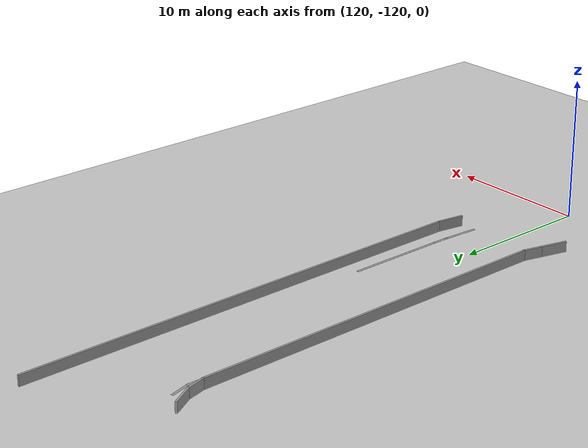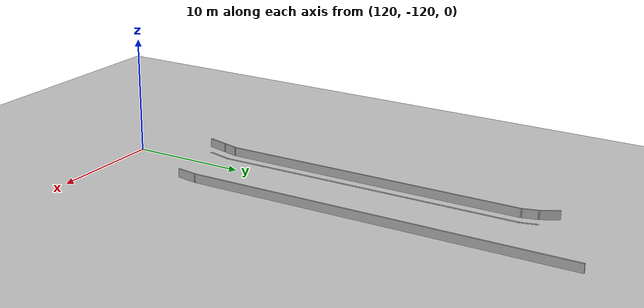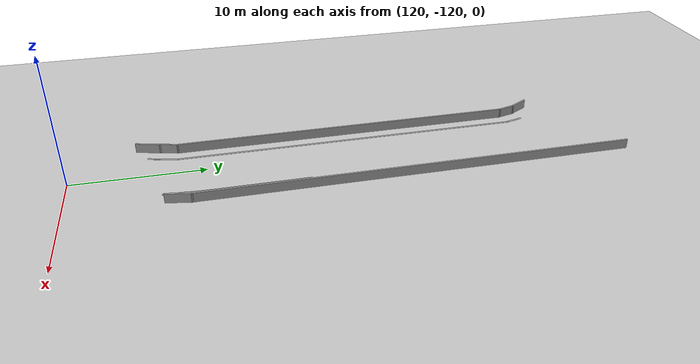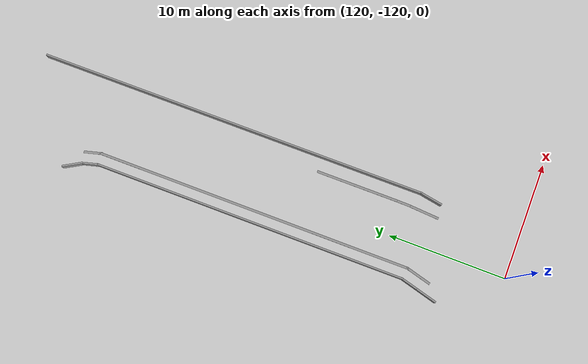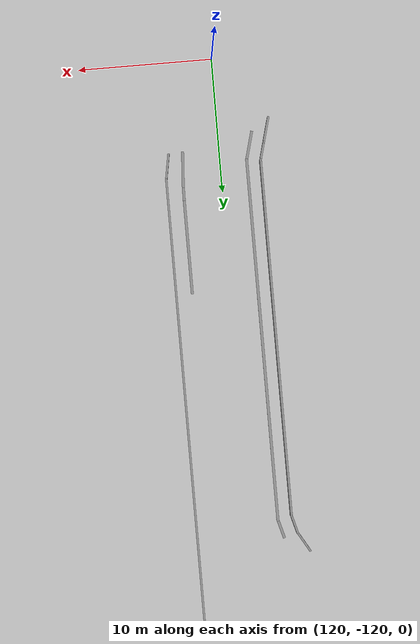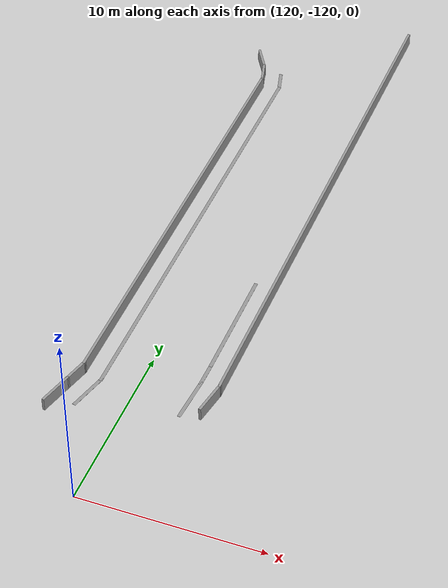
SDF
<sdf version="1.6">
 <world name="default">
  <model name="ground_plane">
   <static>1</static>
   <link name="link">
    <collision name="collision">
     <geometry><plane><normal>0 0 1</normal><size>100 100</size></plane></geometry>
     <surface>
      <contact><collide_bitmask>65535</collide_bitmask></contact>
      <friction><ode><mu>100</mu><mu2>50</mu2></ode></friction>
     </surface>
    </collision>
    <visual name="visual">
     <cast_shadows>0</cast_shadows>
     <geometry><plane><normal>0 0 1</normal><size>100 100</size></plane></geometry>
     <material>
      <script><uri>file://media/materials/scripts/gazebo.material</uri><name>Gazebo/Grey</name></script>
     </material>
    </visual>
   </link>
  </model>
  <model name="GercekDuvarSeritKoyu1">
   <link name="Wall_177">
    <pose>59.6456 56.4099 0 0 -0 2.8797</pose>
    <inertial>
     <mass>1</mass>
     <inertia><ixx>1</ixx><ixy>0</ixy><ixz>0</ixz><iyy>1</iyy><iyz>0</iyz><izz>1</izz></inertia>
    </inertial>
    <visual name="Wall_177_Visual">
     <pose>0 0 0.375 0 -0 0</pose>
     <geometry><box><size>2 0.15 0.75</size></box></geometry>
     <material>
      <script><uri>file://media/materials/scripts/gazebo.material</uri><name>Gazebo/Grey</name></script>
      <ambient>0.5 0.5 0.5 1</ambient>
      <shader type="pixel"><normal_map>__default__</normal_map></shader>
      <diffuse>0.7 0.7 0.7 1</diffuse>
      <specular>0.01 0.01 0.01 1</specular>
      <emissive>0 0 0 1</emissive>
     </material>
     <meta><layer>0</layer></meta>
    </visual>
    <collision name="Wall_177_Collision">
     <pose>0 0 0.375 0 -0 0</pose>
     <geometry><box><size>2 0.15 0.75</size></box></geometry>
     <surface>
      <friction>
       <ode><mu>1</mu><mu2>1</mu2><fdir1>0 0 0</fdir1><slip1>0</slip1><slip2>0</slip2></ode>
       <torsional>
        <coefficient>1</coefficient>
        <patch_radius>0</patch_radius>
        <surface_radius>0</surface_radius>
        <use_patch_radius>1</use_patch_radius>
        <ode><slip>0</slip></ode>
       </torsional>
      </friction>
      <bounce><restitution_coefficient>0</restitution_coefficient><threshold>1e+06</threshold></bounce>
      <contact>
       <collide_without_contact>0</collide_without_contact>
       <collide_without_contact_bitmask>1</collide_without_contact_bitmask>
       <collide_bitmask>1</collide_bitmask>
       <ode>
        <soft_cfm>0</soft_cfm>
        <soft_erp>0.2</soft_erp>
        <kp>1e+13</kp>
        <kd>1</kd>
        <max_vel>0.01</max_vel>
        <min_depth>0</min_depth>
       </ode>
       <bullet>
        <split_impulse>1</split_impulse>
        <split_impulse_penetration_threshold>-0.01</split_impulse_penetration_threshold>
        <soft_cfm>0</soft_cfm>
        <soft_erp>0.2</soft_erp>
        <kp>1e+13</kp>
        <kd>1</kd>
       </bullet>
      </contact>
     </surface>
    </collision>
   </link>
   <link name="Wall_178">
    <pose>58.1001 56.8239 0 0 -0 2.88008</pose>
    <inertial>
     <mass>1</mass>
     <inertia><ixx>1</ixx><ixy>0</ixy><ixz>0</ixz><iyy>1</iyy><iyz>0</iyz><izz>1</izz></inertia>
    </inertial>
    <visual name="Wall_178_Visual">
     <pose>0 0 0.375 0 -0 0</pose>
     <geometry><box><size>1.5 0.15 0.75</size></box></geometry>
     <material>
      <script><uri>file://media/materials/scripts/gazebo.material</uri><name>Gazebo/Grey</name></script>
      <ambient>0.5 0.5 0.5 1</ambient>
      <shader type="pixel"><normal_map>__default__</normal_map></shader>
      <diffuse>0.7 0.7 0.7 1</diffuse>
      <specular>0.01 0.01 0.01 1</specular>
      <emissive>0 0 0 1</emissive>
     </material>
     <meta><layer>0</layer></meta>
    </visual>
    <collision name="Wall_178_Collision">
     <pose>0 0 0.375 0 -0 0</pose>
     <geometry><box><size>1.5 0.15 0.75</size></box></geometry>
     <surface>
      <friction>
       <ode><mu>1</mu><mu2>1</mu2><fdir1>0 0 0</fdir1><slip1>0</slip1><slip2>0</slip2></ode>
       <torsional>
        <coefficient>1</coefficient>
        <patch_radius>0</patch_radius>
        <surface_radius>0</surface_radius>
        <use_patch_radius>1</use_patch_radius>
        <ode><slip>0</slip></ode>
       </torsional>
      </friction>
      <bounce><restitution_coefficient>0</restitution_coefficient><threshold>1e+06</threshold></bounce>
      <contact>
       <collide_without_contact>0</collide_without_contact>
       <collide_without_contact_bitmask>1</collide_without_contact_bitmask>
       <collide_bitmask>1</collide_bitmask>
       <ode>
        <soft_cfm>0</soft_cfm>
        <soft_erp>0.2</soft_erp>
        <kp>1e+13</kp>
        <kd>1</kd>
        <max_vel>0.01</max_vel>
        <min_depth>0</min_depth>
       </ode>
       <bullet>
        <split_impulse>1</split_impulse>
        <split_impulse_penetration_threshold>-0.01</split_impulse_penetration_threshold>
        <soft_cfm>0</soft_cfm>
        <soft_erp>0.2</soft_erp>
        <kp>1e+13</kp>
        <kd>1</kd>
       </bullet>
      </contact>
     </surface>
    </collision>
   </link>
   <link name="Wall_179">
    <pose>44.1481 56.9984 0 0 -0 3.14159</pose>
    <inertial>
     <mass>1</mass>
     <inertia><ixx>1</ixx><ixy>0</ixy><ixz>0</ixz><iyy>1</iyy><iyz>0</iyz><izz>1</izz></inertia>
    </inertial>
    <visual name="Wall_179_Visual">
     <pose>0 0 0.375 0 -0 0</pose>
     <geometry><box><size>26.75 0.15 0.75</size></box></geometry>
     <material>
      <script><uri>file://media/materials/scripts/gazebo.material</uri><name>Gazebo/Grey</name></script>
      <ambient>0.5 0.5 0.5 1</ambient>
      <shader type="pixel"><normal_map>__default__</normal_map></shader>
      <diffuse>0.7 0.7 0.7 1</diffuse>
      <specular>0.01 0.01 0.01 1</specular>
      <emissive>0 0 0 1</emissive>
     </material>
     <meta><layer>0</layer></meta>
    </visual>
    <collision name="Wall_179_Collision">
     <pose>0 0 0.375 0 -0 0</pose>
     <geometry><box><size>26.75 0.15 0.75</size></box></geometry>
     <surface>
      <friction>
       <ode><mu>1</mu><mu2>1</mu2><fdir1>0 0 0</fdir1><slip1>0</slip1><slip2>0</slip2></ode>
       <torsional>
        <coefficient>1</coefficient>
        <patch_radius>0</patch_radius>
        <surface_radius>0</surface_radius>
        <use_patch_radius>1</use_patch_radius>
        <ode><slip>0</slip></ode>
       </torsional>
      </friction>
      <bounce><restitution_coefficient>0</restitution_coefficient><threshold>1e+06</threshold></bounce>
      <contact>
       <collide_without_contact>0</collide_without_contact>
       <collide_without_contact_bitmask>1</collide_without_contact_bitmask>
       <collide_bitmask>1</collide_bitmask>
       <ode>
        <soft_cfm>0</soft_cfm>
        <soft_erp>0.2</soft_erp>
        <kp>1e+13</kp>
        <kd>1</kd>
        <max_vel>0.01</max_vel>
        <min_depth>0</min_depth>
       </ode>
       <bullet>
        <split_impulse>1</split_impulse>
        <split_impulse_penetration_threshold>-0.01</split_impulse_penetration_threshold>
        <soft_cfm>0</soft_cfm>
        <soft_erp>0.2</soft_erp>
        <kp>1e+13</kp>
        <kd>1</kd>
       </bullet>
      </contact>
     </surface>
    </collision>
   </link>
   <link name="Wall_181">
    <pose>30.1961 56.8239 0 0 0 -2.88008</pose>
    <inertial>
     <mass>1</mass>
     <inertia><ixx>1</ixx><ixy>0</ixy><ixz>0</ixz><iyy>1</iyy><iyz>0</iyz><izz>1</izz></inertia>
    </inertial>
    <visual name="Wall_181_Visual">
     <pose>0 0 0.375 0 -0 0</pose>
     <geometry><box><size>1.5 0.15 0.75</size></box></geometry>
     <material>
      <script><uri>file://media/materials/scripts/gazebo.material</uri><name>Gazebo/Grey</name></script>
      <ambient>0.5 0.5 0.5 1</ambient>
      <shader type="pixel"><normal_map>__default__</normal_map></shader>
      <diffuse>0.7 0.7 0.7 1</diffuse>
      <specular>0.01 0.01 0.01 1</specular>
      <emissive>0 0 0 1</emissive>
     </material>
     <meta><layer>0</layer></meta>
    </visual>
    <collision name="Wall_181_Collision">
     <pose>0 0 0.375 0 -0 0</pose>
     <geometry><box><size>1.5 0.15 0.75</size></box></geometry>
     <surface>
      <friction>
       <ode><mu>1</mu><mu2>1</mu2><fdir1>0 0 0</fdir1><slip1>0</slip1><slip2>0</slip2></ode>
       <torsional>
        <coefficient>1</coefficient>
        <patch_radius>0</patch_radius>
        <surface_radius>0</surface_radius>
        <use_patch_radius>1</use_patch_radius>
        <ode><slip>0</slip></ode>
       </torsional>
      </friction>
      <bounce><restitution_coefficient>0</restitution_coefficient><threshold>1e+06</threshold></bounce>
      <contact>
       <collide_without_contact>0</collide_without_contact>
       <collide_without_contact_bitmask>1</collide_without_contact_bitmask>
       <collide_bitmask>1</collide_bitmask>
       <ode>
        <soft_cfm>0</soft_cfm>
        <soft_erp>0.2</soft_erp>
        <kp>1e+13</kp>
        <kd>1</kd>
        <max_vel>0.01</max_vel>
        <min_depth>0</min_depth>
       </ode>
       <bullet>
        <split_impulse>1</split_impulse>
        <split_impulse_penetration_threshold>-0.01</split_impulse_penetration_threshold>
        <soft_cfm>0</soft_cfm>
        <soft_erp>0.2</soft_erp>
        <kp>1e+13</kp>
        <kd>1</kd>
       </bullet>
      </contact>
     </surface>
    </collision>
   </link>
   <link name="Wall_182">
    <pose>28.8516 56.2494 0 0 0 -2.61779</pose>
    <inertial>
     <mass>1</mass>
     <inertia><ixx>1</ixx><ixy>0</ixy><ixz>0</ixz><iyy>1</iyy><iyz>0</iyz><izz>1</izz></inertia>
    </inertial>
    <visual name="Wall_182_Visual">
     <pose>0 0 0.375 0 -0 0</pose>
     <geometry><box><size>1.75 0.15 0.75</size></box></geometry>
     <material>
      <script><uri>file://media/materials/scripts/gazebo.material</uri><name>Gazebo/Grey</name></script>
      <ambient>0.5 0.5 0.5 1</ambient>
      <shader type="pixel"><normal_map>__default__</normal_map></shader>
      <diffuse>0.7 0.7 0.7 1</diffuse>
      <specular>0.01 0.01 0.01 1</specular>
      <emissive>0 0 0 1</emissive>
     </material>
     <meta><layer>0</layer></meta>
    </visual>
    <collision name="Wall_182_Collision">
     <pose>0 0 0.375 0 -0 0</pose>
     <geometry><box><size>1.75 0.15 0.75</size></box></geometry>
     <surface>
      <friction>
       <ode><mu>1</mu><mu2>1</mu2><fdir1>0 0 0</fdir1><slip1>0</slip1><slip2>0</slip2></ode>
       <torsional>
        <coefficient>1</coefficient>
        <patch_radius>0</patch_radius>
        <surface_radius>0</surface_radius>
        <use_patch_radius>1</use_patch_radius>
        <ode><slip>0</slip></ode>
       </torsional>
      </friction>
      <bounce><restitution_coefficient>0</restitution_coefficient><threshold>1e+06</threshold></bounce>
      <contact>
       <collide_without_contact>0</collide_without_contact>
       <collide_without_contact_bitmask>1</collide_without_contact_bitmask>
       <collide_bitmask>1</collide_bitmask>
       <ode>
        <soft_cfm>0</soft_cfm>
        <soft_erp>0.2</soft_erp>
        <kp>1e+13</kp>
        <kd>1</kd>
        <max_vel>0.01</max_vel>
        <min_depth>0</min_depth>
       </ode>
       <bullet>
        <split_impulse>1</split_impulse>
        <split_impulse_penetration_threshold>-0.01</split_impulse_penetration_threshold>
        <soft_cfm>0</soft_cfm>
        <soft_erp>0.2</soft_erp>
        <kp>1e+13</kp>
        <kd>1</kd>
       </bullet>
      </contact>
     </surface>
    </collision>
   </link>
   <link name="Wall_280">
    <pose>57.3186 62.8229 0 0 -0 3.07486</pose>
    <visual name="Wall_280_Visual">
     <pose>0 0 0.005 0 -0 0</pose>
     <geometry><box><size>2.70502 0.2 0.01</size></box></geometry>
     <material>
      <script><uri>file://media/materials/scripts/gazebo.material</uri><name>Gazebo/Grey</name></script>
      <ambient>1 1 1 1</ambient>
      <shader type="pixel"/>
     </material>
     <meta><layer>0</layer></meta>
    </visual>
    <collision name="Wall_280_Collision">
     <pose>0 0 0.005 0 -0 0</pose>
     <geometry><box><size>2.70502 0.2 0.01</size></box></geometry>
     <surface>
      <friction>
       <ode><mu>1</mu><mu2>1</mu2><fdir1>0 0 0</fdir1><slip1>0</slip1><slip2>0</slip2></ode>
       <torsional>
        <coefficient>1</coefficient>
        <patch_radius>0</patch_radius>
        <surface_radius>0</surface_radius>
        <use_patch_radius>1</use_patch_radius>
        <ode><slip>0</slip></ode>
       </torsional>
      </friction>
      <bounce><restitution_coefficient>0</restitution_coefficient><threshold>1e+06</threshold></bounce>
      <contact>
       <collide_without_contact>0</collide_without_contact>
       <collide_without_contact_bitmask>1</collide_without_contact_bitmask>
       <collide_bitmask>1</collide_bitmask>
       <ode>
        <soft_cfm>0</soft_cfm>
        <soft_erp>0.2</soft_erp>
        <kp>1e+13</kp>
        <kd>1</kd>
        <max_vel>0.01</max_vel>
        <min_depth>0</min_depth>
       </ode>
       <bullet>
        <split_impulse>1</split_impulse>
        <split_impulse_penetration_threshold>-0.01</split_impulse_penetration_threshold>
        <soft_cfm>0</soft_cfm>
        <soft_erp>0.2</soft_erp>
        <kp>1e+13</kp>
        <kd>1</kd>
       </bullet>
      </contact>
     </surface>
    </collision>
   </link>
   <link name="Wall_281">
    <pose>55.4846 62.9164 0 0 -0 3.12449</pose>
    <visual name="Wall_281_Visual">
     <pose>0 0 0.005 0 -0 0</pose>
     <geometry><box><size>1.36898 0.2 0.01</size></box></geometry>
     <material>
      <script><uri>file://media/materials/scripts/gazebo.material</uri><name>Gazebo/Grey</name></script>
      <ambient>1 1 1 1</ambient>
      <shader type="pixel"/>
     </material>
     <meta><layer>0</layer></meta>
    </visual>
    <collision name="Wall_281_Collision">
     <pose>0 0 0.005 0 -0 0</pose>
     <geometry><box><size>1.36898 0.2 0.01</size></box></geometry>
     <surface>
      <friction>
       <ode><mu>1</mu><mu2>1</mu2><fdir1>0 0 0</fdir1><slip1>0</slip1><slip2>0</slip2></ode>
       <torsional>
        <coefficient>1</coefficient>
        <patch_radius>0</patch_radius>
        <surface_radius>0</surface_radius>
        <use_patch_radius>1</use_patch_radius>
        <ode><slip>0</slip></ode>
       </torsional>
      </friction>
      <bounce><restitution_coefficient>0</restitution_coefficient><threshold>1e+06</threshold></bounce>
      <contact>
       <collide_without_contact>0</collide_without_contact>
       <collide_without_contact_bitmask>1</collide_without_contact_bitmask>
       <collide_bitmask>1</collide_bitmask>
       <ode>
        <soft_cfm>0</soft_cfm>
        <soft_erp>0.2</soft_erp>
        <kp>1e+13</kp>
        <kd>1</kd>
        <max_vel>0.01</max_vel>
        <min_depth>0</min_depth>
       </ode>
       <bullet>
        <split_impulse>1</split_impulse>
        <split_impulse_penetration_threshold>-0.01</split_impulse_penetration_threshold>
        <soft_cfm>0</soft_cfm>
        <soft_erp>0.2</soft_erp>
        <kp>1e+13</kp>
        <kd>1</kd>
       </bullet>
      </contact>
     </surface>
    </collision>
   </link>
   <link name="Wall_282">
    <pose>51.4751 62.9264 0 0 -0 3.14159</pose>
    <visual name="Wall_282_Visual">
     <pose>0 0 0.005 0 -0 0</pose>
     <geometry><box><size>7.04981 0.2 0.01</size></box></geometry>
     <material>
      <script><uri>file://media/materials/scripts/gazebo.material</uri><name>Gazebo/Grey</name></script>
      <ambient>1 1 1 1</ambient>
      <shader type="pixel"/>
     </material>
     <meta><layer>0</layer></meta>
    </visual>
    <collision name="Wall_282_Collision">
     <pose>0 0 0.005 0 -0 0</pose>
     <geometry><box><size>7.04981 0.2 0.01</size></box></geometry>
     <surface>
      <friction>
       <ode><mu>1</mu><mu2>1</mu2><fdir1>0 0 0</fdir1><slip1>0</slip1><slip2>0</slip2></ode>
       <torsional>
        <coefficient>1</coefficient>
        <patch_radius>0</patch_radius>
        <surface_radius>0</surface_radius>
        <use_patch_radius>1</use_patch_radius>
        <ode><slip>0</slip></ode>
       </torsional>
      </friction>
      <bounce><restitution_coefficient>0</restitution_coefficient><threshold>1e+06</threshold></bounce>
      <contact>
       <collide_without_contact>0</collide_without_contact>
       <collide_without_contact_bitmask>1</collide_without_contact_bitmask>
       <collide_bitmask>1</collide_bitmask>
       <ode>
        <soft_cfm>0</soft_cfm>
        <soft_erp>0.2</soft_erp>
        <kp>1e+13</kp>
        <kd>1</kd>
        <max_vel>0.01</max_vel>
        <min_depth>0</min_depth>
       </ode>
       <bullet>
        <split_impulse>1</split_impulse>
        <split_impulse_penetration_threshold>-0.01</split_impulse_penetration_threshold>
        <soft_cfm>0</soft_cfm>
        <soft_erp>0.2</soft_erp>
        <kp>1e+13</kp>
        <kd>1</kd>
       </bullet>
      </contact>
     </surface>
    </collision>
   </link>
   <link name="Wall_289">
    <pose>58.6461 57.7279 0 0 -0 2.87998</pose>
    <visual name="Wall_289_Visual">
     <pose>0 0 0.005 0 -0 0</pose>
     <geometry><box><size>2.29986 0.2 0.01</size></box></geometry>
     <material>
      <script><uri>file://media/materials/scripts/gazebo.material</uri><name>Gazebo/Grey</name></script>
      <ambient>1 1 1 1</ambient>
      <shader type="pixel"/>
     </material>
     <meta><layer>0</layer></meta>
    </visual>
    <collision name="Wall_289_Collision">
     <pose>0 0 0.005 0 -0 0</pose>
     <geometry><box><size>2.29986 0.2 0.01</size></box></geometry>
     <surface>
      <friction>
       <ode><mu>1</mu><mu2>1</mu2><fdir1>0 0 0</fdir1><slip1>0</slip1><slip2>0</slip2></ode>
       <torsional>
        <coefficient>1</coefficient>
        <patch_radius>0</patch_radius>
        <surface_radius>0</surface_radius>
        <use_patch_radius>1</use_patch_radius>
        <ode><slip>0</slip></ode>
       </torsional>
      </friction>
      <bounce><restitution_coefficient>0</restitution_coefficient><threshold>1e+06</threshold></bounce>
      <contact>
       <collide_without_contact>0</collide_without_contact>
       <collide_without_contact_bitmask>1</collide_without_contact_bitmask>
       <collide_bitmask>1</collide_bitmask>
       <ode>
        <soft_cfm>0</soft_cfm>
        <soft_erp>0.2</soft_erp>
        <kp>1e+13</kp>
        <kd>1</kd>
        <max_vel>0.01</max_vel>
        <min_depth>0</min_depth>
       </ode>
       <bullet>
        <split_impulse>1</split_impulse>
        <split_impulse_penetration_threshold>-0.01</split_impulse_penetration_threshold>
        <soft_cfm>0</soft_cfm>
        <soft_erp>0.2</soft_erp>
        <kp>1e+13</kp>
        <kd>1</kd>
       </bullet>
      </contact>
     </surface>
    </collision>
   </link>
   <link name="Wall_33">
    <pose>57.5006 63.9734 0 0 -0 2.96783</pose>
    <inertial>
     <mass>1</mass>
     <inertia><ixx>1</ixx><ixy>0</ixy><ixz>0</ixz><iyy>1</iyy><iyz>0</iyz><izz>1</izz></inertia>
    </inertial>
    <visual name="Wall_33_Visual">
     <pose>0 0 0.375 0 -0 0</pose>
     <geometry><box><size>2.0004 0.15 0.75</size></box></geometry>
     <material>
      <script><uri>file://media/materials/scripts/gazebo.material</uri><name>Gazebo/Grey</name></script>
      <ambient>0.5 0.5 0.5 1</ambient>
      <shader type="pixel"><normal_map>__default__</normal_map></shader>
      <diffuse>0.7 0.7 0.7 1</diffuse>
      <specular>0.01 0.01 0.01 1</specular>
      <emissive>0 0 0 1</emissive>
     </material>
     <meta><layer>0</layer></meta>
    </visual>
    <collision name="Wall_33_Collision">
     <pose>0 0 0.375 0 -0 0</pose>
     <geometry><box><size>2.0004 0.15 0.75</size></box></geometry>
     <surface>
      <friction>
       <ode><mu>1</mu><mu2>1</mu2><fdir1>0 0 0</fdir1><slip1>0</slip1><slip2>0</slip2></ode>
       <torsional>
        <coefficient>1</coefficient>
        <patch_radius>0</patch_radius>
        <surface_radius>0</surface_radius>
        <use_patch_radius>1</use_patch_radius>
        <ode><slip>0</slip></ode>
       </torsional>
      </friction>
      <bounce><restitution_coefficient>0</restitution_coefficient><threshold>1e+06</threshold></bounce>
      <contact>
       <collide_without_contact>0</collide_without_contact>
       <collide_without_contact_bitmask>1</collide_without_contact_bitmask>
       <collide_bitmask>1</collide_bitmask>
       <ode>
        <soft_cfm>0</soft_cfm>
        <soft_erp>0.2</soft_erp>
        <kp>1e+13</kp>
        <kd>1</kd>
        <max_vel>0.01</max_vel>
        <min_depth>0</min_depth>
       </ode>
       <bullet>
        <split_impulse>1</split_impulse>
        <split_impulse_penetration_threshold>-0.01</split_impulse_penetration_threshold>
        <soft_cfm>0</soft_cfm>
        <soft_erp>0.2</soft_erp>
        <kp>1e+13</kp>
        <kd>1</kd>
       </bullet>
      </contact>
     </surface>
    </collision>
   </link>
   <link name="Wall_34">
    <pose>39.9141 64.1334 0 0 -0 3.14159</pose>
    <inertial>
     <mass>1</mass>
     <inertia><ixx>1</ixx><ixy>0</ixy><ixz>0</ixz><iyy>1</iyy><iyz>0</iyz><izz>1</izz></inertia>
    </inertial>
    <visual name="Wall_34_Visual">
     <pose>0 0 0.375 0 -0 0</pose>
     <geometry><box><size>33.5 0.15 0.75</size></box></geometry>
     <material>
      <script><uri>file://media/materials/scripts/gazebo.material</uri><name>Gazebo/Grey</name></script>
      <ambient>0.5 0.5 0.5 1</ambient>
      <shader type="pixel"><normal_map>__default__</normal_map></shader>
      <diffuse>0.7 0.7 0.7 1</diffuse>
      <specular>0.01 0.01 0.01 1</specular>
      <emissive>0 0 0 1</emissive>
     </material>
     <meta><layer>0</layer></meta>
    </visual>
    <collision name="Wall_34_Collision">
     <pose>0 0 0.375 0 -0 0</pose>
     <geometry><box><size>33.5 0.15 0.75</size></box></geometry>
     <surface>
      <friction>
       <ode><mu>1</mu><mu2>1</mu2><fdir1>0 0 0</fdir1><slip1>0</slip1><slip2>0</slip2></ode>
       <torsional>
        <coefficient>1</coefficient>
        <patch_radius>0</patch_radius>
        <surface_radius>0</surface_radius>
        <use_patch_radius>1</use_patch_radius>
        <ode><slip>0</slip></ode>
       </torsional>
      </friction>
      <bounce><restitution_coefficient>0</restitution_coefficient><threshold>1e+06</threshold></bounce>
      <contact>
       <collide_without_contact>0</collide_without_contact>
       <collide_without_contact_bitmask>1</collide_without_contact_bitmask>
       <collide_bitmask>1</collide_bitmask>
       <ode>
        <soft_cfm>0</soft_cfm>
        <soft_erp>0.2</soft_erp>
        <kp>1e+13</kp>
        <kd>1</kd>
        <max_vel>0.01</max_vel>
        <min_depth>0</min_depth>
       </ode>
       <bullet>
        <split_impulse>1</split_impulse>
        <split_impulse_penetration_threshold>-0.01</split_impulse_penetration_threshold>
        <soft_cfm>0</soft_cfm>
        <soft_erp>0.2</soft_erp>
        <kp>1e+13</kp>
        <kd>1</kd>
       </bullet>
      </contact>
     </surface>
    </collision>
   </link>
   <link name="Wall_499">
    <pose>44.0821 57.9994 0 0 -0 3.14159</pose>
    <visual name="Wall_499_Visual">
     <pose>0 0 0.005 0 -0 0</pose>
     <geometry><box><size>27.3003 0.2 0.01</size></box></geometry>
     <material>
      <script><uri>file://media/materials/scripts/gazebo.material</uri><name>Gazebo/Grey</name></script>
      <ambient>1 1 1 1</ambient>
      <shader type="pixel"/>
     </material>
     <meta><layer>0</layer></meta>
    </visual>
    <collision name="Wall_499_Collision">
     <pose>0 0 0.005 0 -0 0</pose>
     <geometry><box><size>27.3003 0.2 0.01</size></box></geometry>
     <surface>
      <friction>
       <ode><mu>1</mu><mu2>1</mu2><fdir1>0 0 0</fdir1><slip1>0</slip1><slip2>0</slip2></ode>
       <torsional>
        <coefficient>1</coefficient>
        <patch_radius>0</patch_radius>
        <surface_radius>0</surface_radius>
        <use_patch_radius>1</use_patch_radius>
        <ode><slip>0</slip></ode>
       </torsional>
      </friction>
      <bounce><restitution_coefficient>0</restitution_coefficient><threshold>1e+06</threshold></bounce>
      <contact>
       <collide_without_contact>0</collide_without_contact>
       <collide_without_contact_bitmask>1</collide_without_contact_bitmask>
       <collide_bitmask>1</collide_bitmask>
       <ode>
        <soft_cfm>0</soft_cfm>
        <soft_erp>0.2</soft_erp>
        <kp>1e+13</kp>
        <kd>1</kd>
        <max_vel>0.01</max_vel>
        <min_depth>0</min_depth>
       </ode>
       <bullet>
        <split_impulse>1</split_impulse>
        <split_impulse_penetration_threshold>-0.01</split_impulse_penetration_threshold>
        <soft_cfm>0</soft_cfm>
        <soft_erp>0.2</soft_erp>
        <kp>1e+13</kp>
        <kd>1</kd>
       </bullet>
      </contact>
     </surface>
    </collision>
   </link>
   <link name="Wall_501">
    <pose>29.8801 57.8249 0 0 0 -2.88008</pose>
    <visual name="Wall_501_Visual">
     <pose>0 0 0.005 0 -0 0</pose>
     <geometry><box><size>1.55022 0.2 0.01</size></box></geometry>
     <material>
      <script><uri>file://media/materials/scripts/gazebo.material</uri><name>Gazebo/Grey</name></script>
      <ambient>1 1 1 1</ambient>
      <shader type="pixel"/>
     </material>
     <meta><layer>0</layer></meta>
    </visual>
    <collision name="Wall_501_Collision">
     <pose>0 0 0.005 0 -0 0</pose>
     <geometry><box><size>1.55022 0.2 0.01</size></box></geometry>
     <surface>
      <friction>
       <ode><mu>1</mu><mu2>1</mu2><fdir1>0 0 0</fdir1><slip1>0</slip1><slip2>0</slip2></ode>
       <torsional>
        <coefficient>1</coefficient>
        <patch_radius>0</patch_radius>
        <surface_radius>0</surface_radius>
        <use_patch_radius>1</use_patch_radius>
        <ode><slip>0</slip></ode>
       </torsional>
      </friction>
      <bounce><restitution_coefficient>0</restitution_coefficient><threshold>1e+06</threshold></bounce>
      <contact>
       <collide_without_contact>0</collide_without_contact>
       <collide_without_contact_bitmask>1</collide_without_contact_bitmask>
       <collide_bitmask>1</collide_bitmask>
       <ode>
        <soft_cfm>0</soft_cfm>
        <soft_erp>0.2</soft_erp>
        <kp>1e+13</kp>
        <kd>1</kd>
        <max_vel>0.01</max_vel>
        <min_depth>0</min_depth>
       </ode>
       <bullet>
        <split_impulse>1</split_impulse>
        <split_impulse_penetration_threshold>-0.01</split_impulse_penetration_threshold>
        <soft_cfm>0</soft_cfm>
        <soft_erp>0.2</soft_erp>
        <kp>1e+13</kp>
        <kd>1</kd>
       </bullet>
      </contact>
     </surface>
    </collision>
   </link>
   <static>1</static>
   <pose>59.9324 -54.7034 -0 0 0 -1.5695</pose>
  </model>
 </world>
</sdf>
